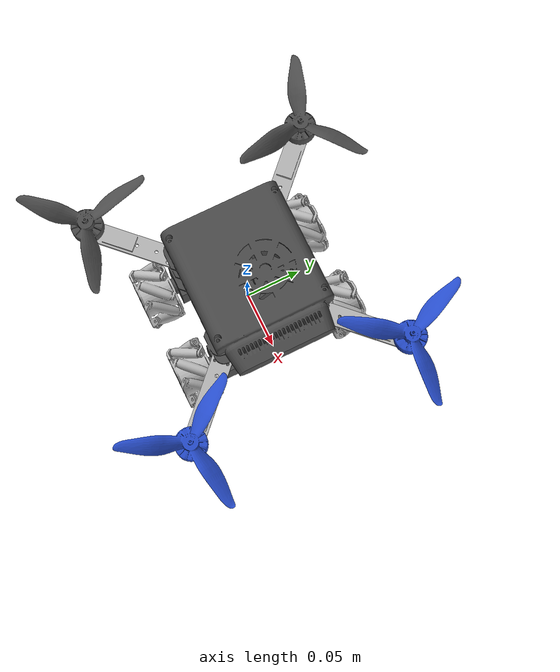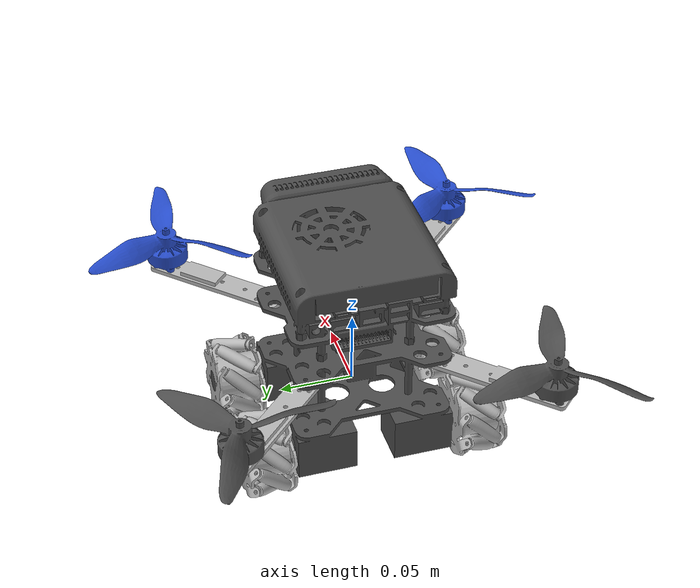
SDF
<!-- DO NOT EDIT: Generated from iris.sdf.jinja -->
<sdf version='1.6'>
  <model name='iris'>
    <link name='base_link'>
      <pose>0 0 0 0 0 0</pose>
      <inertial>
        <pose>0 0 0 0 0 0</pose>
        <mass>2.5</mass>
        <inertia>
          <ixx>0.029125</ixx>
          <ixy>0</ixy>
          <ixz>0</ixz>
          <iyy>0.029125</iyy>
          <iyz>0</iyz>
          <izz>0.055225</izz>
        </inertia>
      </inertial>
      <collision name='base_link_inertia_collision'>
        <pose>0 0 0 0 0 0</pose>
        <geometry>
          <box>
            <size>0.47 0.47 0.11</size>
          </box>
        </geometry>
        <surface>
          <contact>
            <ode>
              <min_depth>0.001</min_depth>
              <max_vel>0</max_vel>
            </ode>
          </contact>
          <friction>
            <ode/>
          </friction>
        </surface>
      </collision>
      <visual name='base_link_inertia_visual'>
        <pose>0 0 0 0 0 0</pose>
        <geometry>
          <mesh>
            <scale>1 1 1</scale>
            <uri>model://uav_v4/meshes/base_link.STL</uri>
          </mesh>
        </geometry>
        <material>
          <script>
            <name>Gazebo/DarkGrey</name>
            <uri>file://media/materials/scripts/gazebo.material</uri>
          </script>
        </material>
      </visual>
      <gravity>1</gravity>
      <velocity_decay/>
    </link>
    <link name='/imu_link'>
      <pose>0 0 0.02 0 0 0</pose>
      <inertial>
        <pose>0 0 0 0 0 0</pose>
        <mass>0.015</mass>
        <inertia>
          <ixx>1e-05</ixx>
          <ixy>0</ixy>
          <ixz>0</ixz>
          <iyy>1e-05</iyy>
          <iyz>0</iyz>
          <izz>1e-05</izz>
        </inertia>
      </inertial>
    </link>
    <joint name='/imu_joint' type='revolute'>
      <child>/imu_link</child>
      <parent>base_link</parent>
      <axis>
        <xyz>1 0 0</xyz>
        <limit>
          <lower>0</lower>
          <upper>0</upper>
          <effort>0</effort>
          <velocity>0</velocity>
        </limit>
        <dynamics>
          <spring_reference>0</spring_reference>
          <spring_stiffness>0</spring_stiffness>
        </dynamics>
        <use_parent_model_frame>1</use_parent_model_frame>
      </axis>
    </joint>
    <joint name='arm1_joint' type='fixed'>
      <pose relative_to='base_link'>0.0475 -0.0455 0.04 0 -0 0</pose>
      <parent>base_link</parent>
      <child>arm1_link</child>
      <axis>
        <xyz>0 0 1</xyz>
        <limit>
          <lower>-3.14</lower>
          <upper>3.14</upper>
          <effort>1</effort>
          <velocity>1</velocity>
        </limit>
        <dynamics>
          <spring_reference>0</spring_reference>
          <spring_stiffness>0</spring_stiffness>
        </dynamics>
      </axis>
    </joint>
    <link name='arm1_link'>
      <pose relative_to='arm1_joint'>0 0 0 0 -0 0</pose>
      <inertial>
        <pose>0.029359 -0.029033 0.001856 0 -0 0</pose>
        <mass>0.010108</mass>
        <inertia>
          <ixx>3.6495e-06</ixx>
          <ixy>3.4138e-06</ixy>
          <ixz>-5.9914e-21</ixz>
          <iyy>3.7257e-06</iyy>
          <iyz>6.4916e-21</iyz>
          <izz>7.3601e-06</izz>
        </inertia>
      </inertial>
      <collision name='arm1_link_collision'>
        <pose>0 0 0 0 -0 0</pose>
        <geometry>
          <mesh>
            <scale>1 1 1</scale>
            <uri>model://uav_v4/meshes/arm1_link.STL</uri>
          </mesh>
        </geometry>
      </collision>
      <visual name='arm1_link_visual'>
        <pose>0 0 0 0 -0 0</pose>
        <geometry>
          <mesh>
            <scale>1 1 1</scale>
            <uri>model://uav_v4/meshes/arm1_link.STL</uri>
          </mesh>
        </geometry>
      </visual>
    </link>
    <joint name='arm2_joint' type='fixed'>
      <pose relative_to='base_link'>-0.0475 0.0455 0.04 0 -0 0</pose>
      <parent>base_link</parent>
      <child>arm2_link</child>
      <axis>
        <xyz>0 0 1</xyz>
        <limit>
          <lower>-3.14</lower>
          <upper>3.14</upper>
          <effort>1</effort>
          <velocity>1</velocity>
        </limit>
        <dynamics>
          <spring_reference>0</spring_reference>
          <spring_stiffness>0</spring_stiffness>
        </dynamics>
      </axis>
    </joint>
    <link name='arm2_link'>
      <pose relative_to='arm2_joint'>0 0 0 0 -0 0</pose>
      <inertial>
        <pose>-0.029296 0.028971 0.001856 0 -0 0</pose>
        <mass>0.0101076</mass>
        <inertia>
          <ixx>3.6495e-06</ixx>
          <ixy>3.4138e-06</ixy>
          <ixz>-5.9914e-21</ixz>
          <iyy>3.7257e-06</iyy>
          <iyz>6.4916e-21</iyz>
          <izz>7.3601e-06</izz>
        </inertia>
      </inertial>
      <collision name='arm2_link_collision'>
        <pose>0 0 0 0 -0 0</pose>
        <geometry>
          <mesh>
            <scale>1 1 1</scale>
            <uri>model://uav_v4/meshes/arm2_link.STL</uri>
          </mesh>
        </geometry>
      </collision>
      <visual name='arm2_link_visual'>
        <pose>0 0 0 0 -0 0</pose>
        <geometry>
          <mesh>
            <scale>1 1 1</scale>
            <uri>model://uav_v4/meshes/arm2_link.STL</uri>
          </mesh>
        </geometry>
      </visual>
    </link>
    <joint name='arm3_joint' type='fixed'>
      <pose relative_to='base_link'>0.0475 0.0455 0.04 0 -0 0</pose>
      <parent>base_link</parent>
      <child>arm3_link</child>
      <axis>
        <xyz>0 0 1</xyz>
        <limit>
          <lower>-3.14</lower>
          <upper>3.14</upper>
          <effort>1</effort>
          <velocity>1</velocity>
        </limit>
        <dynamics>
          <spring_reference>0</spring_reference>
          <spring_stiffness>0</spring_stiffness>
        </dynamics>
      </axis>
    </joint>
    <link name='arm3_link'>
      <pose relative_to='arm3_joint'>0 0 0 0 -0 0</pose>
      <inertial>
        <pose>0.029033 0.029359 0.001856 0 -0 0</pose>
        <mass>0.010108</mass>
        <inertia>
          <ixx>3.6495e-06</ixx>
          <ixy>3.4138e-06</ixy>
          <ixz>-5.9914e-21</ixz>
          <iyy>3.7257e-06</iyy>
          <iyz>6.4916e-21</iyz>
          <izz>7.3601e-06</izz>
        </inertia>
      </inertial>
      <collision name='arm3_link_collision'>
        <pose>0 0 0 0 -0 0</pose>
        <geometry>
          <mesh>
            <scale>1 1 1</scale>
            <uri>model://uav_v4/meshes/arm3_link.STL</uri>
          </mesh>
        </geometry>
      </collision>
      <visual name='arm3_link_visual'>
        <pose>0 0 0 0 -0 0</pose>
        <geometry>
          <mesh>
            <scale>1 1 1</scale>
            <uri>model://uav_v4/meshes/arm3_link.STL</uri>
          </mesh>
        </geometry>
      </visual>
    </link>
    <joint name='arm4_joint' type='fixed'>
      <pose relative_to='base_link'>-0.0475 -0.0455 0.04 0 -0 0</pose>
      <parent>base_link</parent>
      <child>arm4_link</child>
      <axis>
        <xyz>0 0 1</xyz>
        <limit>
          <lower>-3.14</lower>
          <upper>3.14</upper>
          <effort>1</effort>
          <velocity>1</velocity>
        </limit>
        <dynamics>
          <spring_reference>0</spring_reference>
          <spring_stiffness>0</spring_stiffness>
        </dynamics>
      </axis>
    </joint>
    <link name='arm4_link'>
      <pose relative_to='arm4_joint'>0 0 0 0 -0 0</pose>
      <inertial>
        <pose>-0.029033 -0.029359 0.001856 0 -0 0</pose>
        <mass>0.010108</mass>
        <inertia>
          <ixx>3.6495e-06</ixx>
          <ixy>3.4138e-06</ixy>
          <ixz>-5.9914e-21</ixz>
          <iyy>3.7257e-06</iyy>
          <iyz>6.4916e-21</iyz>
          <izz>7.3601e-06</izz>
        </inertia>
      </inertial>
      <collision name='arm4_link_collision'>
        <pose>0 0 0 0 -0 0</pose>
        <geometry>
          <mesh>
            <scale>1 1 1</scale>
            <uri>model://uav_v4/meshes/arm4_link.STL</uri>
          </mesh>
        </geometry>
      </collision>
      <visual name='arm4_link_visual'>
        <pose>0 0 0 0 -0 0</pose>
        <geometry>
          <mesh>
            <scale>1 1 1</scale>
            <uri>model://uav_v4/meshes/arm4_link.STL</uri>
          </mesh>
        </geometry>
      </visual>
    </link>
    <joint name='wing1_joint' type='revolute'>
      <pose relative_to='arm1_link'>0.057004 -0.05632 0.0293 0 -0 0</pose>
      <parent>arm1_link</parent>
      <child>wing1_link</child>
      <axis>
        <xyz>0 0 1</xyz>
        <limit>
          <lower>-1e+16</lower>
          <upper>1e+16</upper>
        </limit>
        <dynamics>
          <spring_reference>0</spring_reference>
          <spring_stiffness>0</spring_stiffness>
        </dynamics>
        <use_parent_model_frame>1</use_parent_model_frame>
      </axis>
    </joint>
    <link name='wing1_link'>
      <pose relative_to='wing1_joint'>0 0 0 0 -0 0</pose>
      <inertial>
        <pose>0 0 0 0 0 0</pose>
        <mass>0.005</mass>
        <inertia>
          <ixx>1.0711e-05</ixx>
          <ixy>-2.2212e-10</ixy>
          <ixz>-2.8595e-11</ixz>
          <iyy>1.0711e-05</iyy>
          <iyz>-9.5706e-11</iyz>
          <izz>1.5206e-05</izz>
        </inertia>
      </inertial>
      <collision name='wing1_link_collision'>
        <pose>0 0 0 0 0 0</pose>
        <geometry>
          <cylinder>
            <length>0.005</length>
            <radius>0.128</radius>
          </cylinder>
        </geometry>
        <surface>
          <contact>
            <ode/>
          </contact>
          <friction>
            <ode/>
          </friction>
        </surface>
      </collision>
      <visual name='wing1_link_visual'>
        <pose>0 0 0 0 0 0</pose>
        <geometry>
          <mesh>
            <scale>1 1 1</scale>
            <uri>model://uav_v4/meshes/wing1_link.STL</uri>
          </mesh>
        </geometry>
        <material>
          <script>
            <name>Gazebo/Blue</name>
            <uri>file://media/materials/scripts/gazebo.material</uri>
          </script>
        </material>
      </visual>
      <gravity>1</gravity>
      <velocity_decay/>
    </link>

    <joint name='wing2_joint' type='revolute'>
      <pose relative_to='arm2_link'>-0.056745 0.056256 0.0293 0 -0 0</pose>
      <parent>arm2_link</parent>
      <child>wing2_link</child>
      <axis>
        <xyz>0 0 1</xyz>
        <limit>
          <lower>-1e+16</lower>
          <upper>1e+16</upper>
        </limit>
        <dynamics>
          <spring_reference>0</spring_reference>
          <spring_stiffness>0</spring_stiffness>
        </dynamics>
        <use_parent_model_frame>1</use_parent_model_frame>
      </axis>
    </joint>
    <link name='wing2_link'>
      <pose relative_to='wing2_joint'>0 0 0 0 -0 0</pose>
      <inertial>
        <pose>0 0 0 0 0 0</pose>
        <mass>0.005</mass>
        <inertia>
          <ixx>1.0711e-05</ixx>
          <ixy>-2.2212e-10</ixy>
          <ixz>-2.8595e-11</ixz>
          <iyy>1.0711e-05</iyy>
          <iyz>-9.5706e-11</iyz>
          <izz>1.5206e-05</izz>
        </inertia>
      </inertial>
      <collision name='wing2_link_collision'>
        <pose>0 0 0 0 0 0</pose>
        <geometry>
          <cylinder>
            <length>0.005</length>
            <radius>0.128</radius>
          </cylinder>
        </geometry>
        <surface>
          <contact>
            <ode/>
          </contact>
          <friction>
            <ode/>
          </friction>
        </surface>
      </collision>
      <visual name='wing2_link_visual'>
        <pose>0 0 0 0 0 0</pose>
        <geometry>
          <mesh>
            <scale>1 1 1</scale>
            <uri>model://uav_v4/meshes/wing2_link.STL</uri>
          </mesh>
        </geometry>
        <material>
          <script>
            <name>Gazebo/DarkGrey</name>
            <uri>file://media/materials/scripts/gazebo.material</uri>
          </script>
        </material>
      </visual>
      <gravity>1</gravity>
      <velocity_decay/>
    </link>
    <joint name='wing3_joint' type='revolute'>
      <pose relative_to='arm3_link'>0.056119 0.056844 0.0293 0 -0 0</pose>
      <parent>arm3_link</parent>
      <child>wing3_link</child>
      <axis>
        <xyz>0 0 1</xyz>
        <limit>
          <lower>-1e+16</lower>
          <upper>1e+16</upper>
        </limit>
        <dynamics>
          <spring_reference>0</spring_reference>
          <spring_stiffness>0</spring_stiffness>
        </dynamics>
        <use_parent_model_frame>1</use_parent_model_frame>
      </axis>
    </joint>
    <link name='wing3_link'>
      <pose relative_to='wing3_joint'>0 0 0 0 -0 0</pose>
      <inertial>
        <pose>0 0 0 0 0 0</pose>
        <mass>0.005</mass>
        <inertia>
          <ixx>1.0711e-05</ixx>
          <ixy>-2.2212e-10</ixy>
          <ixz>-2.8595e-11</ixz>
          <iyy>1.0711e-05</iyy>
          <iyz>-9.5706e-11</iyz>
          <izz>1.5206e-05</izz>
        </inertia>
      </inertial>
      <collision name='wing3_link_collision'>
        <pose>0 0 0 0 0 0</pose>
        <geometry>
          <cylinder>
            <length>0.005</length>
            <radius>0.128</radius>
          </cylinder>
        </geometry>
        <surface>
          <contact>
            <ode/>
          </contact>
          <friction>
            <ode/>
          </friction>
        </surface>
      </collision>
      <visual name='wing3_link_visual'>
        <pose>0 0 0 0 0 0</pose>
        <geometry>
          <mesh>
            <scale>1 1 1</scale>
            <uri>model://uav_v4/meshes/wing3_link.STL</uri>
          </mesh>
        </geometry>
        <material>
          <script>
            <name>Gazebo/Blue</name>
            <uri>file://media/materials/scripts/gazebo.material</uri>
          </script>
        </material>
      </visual>
      <gravity>1</gravity>
      <velocity_decay/>
    </link>
    <joint name='wing4_joint' type='revolute'>
      <pose relative_to='arm4_link'>-0.056169 -0.056994 0.0293 0 -0 0</pose>
      <parent>arm4_link</parent>
      <child>wing4_link</child>
      <axis>
        <xyz>0 0 1</xyz>
        <limit>
          <lower>-1e+16</lower>
          <upper>1e+16</upper>
        </limit>
        <dynamics>
          <spring_reference>0</spring_reference>
          <spring_stiffness>0</spring_stiffness>
        </dynamics>
        <use_parent_model_frame>1</use_parent_model_frame>
      </axis>
    </joint>
    <link name='wing4_link'>
      <pose relative_to='wing4_joint'>0 0 0 0 -0 0</pose>
      <inertial>
        <pose>0 0 0 0 0 0</pose>
        <mass>0.005</mass>
        <inertia>
          <ixx>1.0711e-05</ixx>
          <ixy>-2.2212e-10</ixy>
          <ixz>-2.8595e-11</ixz>
          <iyy>1.0711e-05</iyy>
          <iyz>-9.5706e-11</iyz>
          <izz>1.5206e-05</izz>
        </inertia>
      </inertial>
      <collision name='wing4_link_collision'>
        <pose>0 0 0 0 0 0</pose>
        <geometry>
          <cylinder>
            <length>0.005</length>
            <radius>0.128</radius>
          </cylinder>
        </geometry>
        <surface>
          <contact>
            <ode/>
          </contact>
          <friction>
            <ode/>
          </friction>
        </surface>
      </collision>
      <visual name='wing4_link_visual'>
        <pose>0 0 0 0 0 0</pose>
        <geometry>
          <mesh>
            <scale>1 1 1</scale>
            <uri>model://uav_v4/meshes/wing4_link.STL</uri>
          </mesh>
        </geometry>
        <material>
          <script>
            <name>Gazebo/DarkGrey</name>
            <uri>file://media/materials/scripts/gazebo.material</uri>
          </script>
        </material>
      </visual>
      <gravity>1</gravity>
      <velocity_decay/>
    </link>

    <joint name='wheel1_joint' type='revolute'>
      <pose relative_to='base_link'>0.04 -0.088 -0.015 0 -0 0</pose>
      <parent>base_link</parent>
      <child>wheel1_link</child>
      <axis>
        <xyz>0 1 0</xyz>
        <limit>
          <lower>-1e+16</lower>
          <upper>1e+16</upper>
        </limit>
        <dynamics>
          <spring_reference>0</spring_reference>
          <spring_stiffness>0</spring_stiffness>
        </dynamics>
      </axis>
    </joint>
    <link name='wheel1_link'>
      <pose relative_to='wheel1_joint'>0 0 0 0 -0 0</pose>
      <inertial>
        <pose>-0 0.015781 -0 0 -0 0</pose>
        <mass>0.037807</mass>
        <inertia>
          <ixx>4.513e-06</ixx>
          <ixy>-1.3203e-21</ixy>
          <ixz>-1.8003e-20</ixz>
          <iyy>5.9992e-06</iyy>
          <iyz>-1.2489e-21</iyz>
          <izz>4.513e-06</izz>
        </inertia>
      </inertial>
      <collision name='wheel1_link_collision'>
        <pose>0 0 0 0 -0 0</pose>
        <geometry>
          <mesh>
            <scale>1 1 1</scale>
            <uri>model://uav_v4/meshes/wheel1_link.STL</uri>
          </mesh>
        </geometry>
      </collision>
      <visual name='wheel1_link_visual'>
        <pose>0 0 0 0 -0 0</pose>
        <geometry>
          <mesh>
            <scale>1 1 1</scale>
            <uri>model://uav_v4/meshes/wheel1_link.STL</uri>
          </mesh>
        </geometry>
      </visual>
    </link>
    <joint name='wheel2_joint' type='revolute'>
      <pose relative_to='base_link'>-0.04 -0.088 -0.015 0 -0 0</pose>
      <parent>base_link</parent>
      <child>wheel2_link</child>
      <axis>
        <xyz>0 1 0</xyz>
        <limit>
          <lower>-1e+16</lower>
          <upper>1e+16</upper>
        </limit>
        <dynamics>
          <spring_reference>0</spring_reference>
          <spring_stiffness>0</spring_stiffness>
        </dynamics>
      </axis>
    </joint>
    <link name='wheel2_link'>
      <pose relative_to='wheel2_joint'>0 0 0 0 -0 0</pose>
      <inertial>
        <pose>0 0.015781 -0 0 -0 0</pose>
        <mass>0.037807</mass>
        <inertia>
          <ixx>4.513e-06</ixx>
          <ixy>-1.3756e-21</ixy>
          <ixz>-1.8281e-20</ixz>
          <iyy>5.9992e-06</iyy>
          <iyz>-1.5307e-21</iyz>
          <izz>4.513e-06</izz>
        </inertia>
      </inertial>
      <collision name='wheel2_link_collision'>
        <pose>0 0 0 0 -0 0</pose>
        <geometry>
          <mesh>
            <scale>1 1 1</scale>
            <uri>model://uav_v4/meshes/wheel2_link.STL</uri>
          </mesh>
        </geometry>
      </collision>
      <visual name='wheel2_link_visual'>
        <pose>0 0 0 0 -0 0</pose>
        <geometry>
          <mesh>
            <scale>1 1 1</scale>
            <uri>model://uav_v4/meshes/wheel2_link.STL</uri>
          </mesh>
        </geometry>
      </visual>
    </link>
    <joint name='wheel3_joint' type='revolute'>
      <pose relative_to='base_link'>0.04 0.088 -0.015 0 -0 0</pose>
      <parent>base_link</parent>
      <child>wheel3_link</child>
      <axis>
        <xyz>0 -1 0</xyz>
        <limit>
          <lower>-1e+16</lower>
          <upper>1e+16</upper>
        </limit>
        <dynamics>
          <spring_reference>0</spring_reference>
          <spring_stiffness>0</spring_stiffness>
        </dynamics>
      </axis>
    </joint>
    <link name='wheel3_link'>
      <pose relative_to='wheel3_joint'>0 0 0 0 -0 0</pose>
      <inertial>
        <pose>-0 -0.015781 0 0 -0 0</pose>
        <mass>0.037807</mass>
        <inertia>
          <ixx>4.513e-06</ixx>
          <ixy>1.413e-21</ixy>
          <ixz>1.0661e-20</ixz>
          <iyy>5.9992e-06</iyy>
          <iyz>-7.3807e-22</iyz>
          <izz>4.513e-06</izz>
        </inertia>
      </inertial>
      <collision name='wheel3_link_collision'>
        <pose>0 0 0 0 -0 0</pose>
        <geometry>
          <mesh>
            <scale>1 1 1</scale>
            <uri>model://uav_v4/meshes/wheel3_link.STL</uri>
          </mesh>
        </geometry>
      </collision>
      <visual name='wheel3_link_visual'>
        <pose>0 0 0 0 -0 0</pose>
        <geometry>
          <mesh>
            <scale>1 1 1</scale>
            <uri>model://uav_v4/meshes/wheel3_link.STL</uri>
          </mesh>
        </geometry>
      </visual>
    </link>
    <joint name='wheel4_joint' type='revolute'>
      <pose relative_to='base_link'>-0.04 0.088 -0.015 0 -0 0</pose>
      <parent>base_link</parent>
      <child>wheel4_link</child>
      <axis>
        <xyz>0 1 0</xyz>
        <limit>
          <lower>-1e+16</lower>
          <upper>1e+16</upper>
        </limit>
        <dynamics>
          <spring_reference>0</spring_reference>
          <spring_stiffness>0</spring_stiffness>
        </dynamics>
      </axis>
    </joint>
    <link name='wheel4_link'>
      <pose relative_to='wheel4_joint'>0 0 0 0 -0 0</pose>
      <inertial>
        <pose>-0 -0.015719 0 0 -0 0</pose>
        <mass>0.037807</mass>
        <inertia>
          <ixx>4.513e-06</ixx>
          <ixy>7.8392e-23</ixy>
          <ixz>1.5946e-20</ixz>
          <iyy>5.9992e-06</iyy>
          <iyz>-1.9748e-21</iyz>
          <izz>4.513e-06</izz>
        </inertia>
      </inertial>
      <collision name='wheel4_link_collision'>
        <pose>0 0 0 0 -0 0</pose>
        <geometry>
          <mesh>
            <scale>1 1 1</scale>
            <uri>model://uav_v4/meshes/wheel4_link.STL</uri>
          </mesh>
        </geometry>
      </collision>
      <visual name='wheel4_link_visual'>
        <pose>0 0 0 0 -0 0</pose>
        <geometry>
          <mesh>
            <scale>1 1 1</scale>
            <uri>model://uav_v4/meshes/wheel4_link.STL</uri>
          </mesh>
        </geometry>
      </visual>
    </link>
    <plugin name='rosbag' filename='librotors_gazebo_multirotor_base_plugin.so'>
      <robotNamespace/>
      <linkName>base_link</linkName>
      <rotorVelocitySlowdownSim>10</rotorVelocitySlowdownSim>
    </plugin>
    <plugin name='front_right_motor_model' filename='librotors_gazebo_motor_model.so'>
      <robotNamespace/>
      <jointName>wing1_joint</jointName>
      <linkName>wing1_link</linkName>
      <turningDirection>ccw</turningDirection>
      <timeConstantUp>0.0125</timeConstantUp>
      <timeConstantDown>0.025</timeConstantDown>
      <maxRotVelocity>1100</maxRotVelocity>
      <motorConstant>1.568e-05</motorConstant>
      <momentConstant>0.06</momentConstant>
      <commandSubTopic>/gazebo/command/motor_speed</commandSubTopic>
      <motorNumber>0</motorNumber>
      <rotorDragCoefficient>0.000175</rotorDragCoefficient>
      <rollingMomentCoefficient>1e-06</rollingMomentCoefficient>
      <motorSpeedPubTopic>/motor_speed/0</motorSpeedPubTopic>
      <rotorVelocitySlowdownSim>10</rotorVelocitySlowdownSim>
    </plugin>
    <plugin name='back_left_motor_model' filename='librotors_gazebo_motor_model.so'>
      <robotNamespace/>
      <jointName>wing2_joint</jointName>
      <linkName>wing2_link</linkName>
      <turningDirection>ccw</turningDirection>
      <timeConstantUp>0.0125</timeConstantUp>
      <timeConstantDown>0.025</timeConstantDown>
      <maxRotVelocity>1100</maxRotVelocity>
      <motorConstant>1.568e-05</motorConstant>
      <momentConstant>0.06</momentConstant>
      <commandSubTopic>/gazebo/command/motor_speed</commandSubTopic>
      <motorNumber>1</motorNumber>
      <rotorDragCoefficient>0.000175</rotorDragCoefficient>
      <rollingMomentCoefficient>1e-06</rollingMomentCoefficient>
      <motorSpeedPubTopic>/motor_speed/1</motorSpeedPubTopic>
      <rotorVelocitySlowdownSim>10</rotorVelocitySlowdownSim>
    </plugin>
    <plugin name='front_left_motor_model' filename='librotors_gazebo_motor_model.so'>
      <robotNamespace/>
      <jointName>wing3_joint</jointName>
      <linkName>wing3_link</linkName>
      <turningDirection>cw</turningDirection>
      <timeConstantUp>0.0125</timeConstantUp>
      <timeConstantDown>0.025</timeConstantDown>
      <maxRotVelocity>1100</maxRotVelocity>
      <motorConstant>1.568e-05</motorConstant>
      <momentConstant>0.06</momentConstant>
      <commandSubTopic>/gazebo/command/motor_speed</commandSubTopic>
      <motorNumber>2</motorNumber>
      <rotorDragCoefficient>0.000175</rotorDragCoefficient>
      <rollingMomentCoefficient>1e-06</rollingMomentCoefficient>
      <motorSpeedPubTopic>/motor_speed/2</motorSpeedPubTopic>
      <rotorVelocitySlowdownSim>10</rotorVelocitySlowdownSim>
    </plugin>
    <plugin name='back_right_motor_model' filename='librotors_gazebo_motor_model.so'>
      <robotNamespace/>
      <jointName>wing4_joint</jointName>
      <linkName>wing4_link</linkName>
      <turningDirection>cw</turningDirection>
      <timeConstantUp>0.0125</timeConstantUp>
      <timeConstantDown>0.025</timeConstantDown>
      <maxRotVelocity>1100</maxRotVelocity>
      <motorConstant>1.568e-05</motorConstant>
      <momentConstant>0.06</momentConstant>
      <commandSubTopic>/gazebo/command/motor_speed</commandSubTopic>
      <motorNumber>3</motorNumber>
      <rotorDragCoefficient>0.000175</rotorDragCoefficient>
      <rollingMomentCoefficient>1e-06</rollingMomentCoefficient>
      <motorSpeedPubTopic>/motor_speed/3</motorSpeedPubTopic>
      <rotorVelocitySlowdownSim>10</rotorVelocitySlowdownSim>
    </plugin>
    <include>
      <uri>model://gps</uri>
      <pose>0.05 0 0.04 0 0 0</pose>
      <name>gps0</name>
    </include>
    <joint name='gps0_joint' type='fixed'>
      <child>gps0::link</child>
      <parent>base_link</parent>
    </joint>
    <plugin name='magnetometer_plugin' filename='librotors_gazebo_magnetometer_plugin.so'>
      <robotNamespace/>
      <pubRate>100</pubRate>
      <noiseDensity>0.0004</noiseDensity>
      <randomWalk>6.4e-06</randomWalk>
      <biasCorrelationTime>600</biasCorrelationTime>
      <magTopic>/mag</magTopic>
    </plugin>

    <plugin name="mecanum_drive_plugin" filename="libgazebo_ros_planar_move.so">
      <commandTopic>/mecanum/cmd_vel</commandTopic>
      <odometryTopic>/odom_mecanum</odometryTopic>
      <odometryFrame>odom</odometryFrame>
      <odometryRate>50.0</odometryRate>
      <robotBaseFrame>base_link</robotBaseFrame>
    </plugin>

    <static>0</static>
    <plugin name='rotors_gazebo_imu_plugin' filename='librotors_gazebo_imu_plugin.so'>
      <robotNamespace/>
      <linkName>/imu_link</linkName>
      <imuTopic>/imu</imuTopic>
    </plugin>
  </model>
</sdf>

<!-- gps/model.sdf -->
<sdf version="1.6">
  <model name="gps">
    <link name="link">
      <pose>0 0 0 0 0 0</pose>
      <inertial>
        <pose>0 0 0 0 0 0</pose>
        <mass>0.015</mass>
        <inertia>
          <ixx>1e-05</ixx>
          <ixy>0</ixy>
          <ixz>0</ixz>
          <iyy>1e-05</iyy>
          <iyz>0</iyz>
          <izz>1e-05</izz>
        </inertia>
      </inertial>
      <visual name="visual">
        <geometry>
          <cylinder>
            <radius>0.01</radius>
            <length>0.002</length>
          </cylinder>
        </geometry>
        <material>
          <script>
            <name>Gazebo/Black</name>
            <uri>file://usr/share/gz/gz-sim8/media/gazebo.material</uri>
          </script>
        </material>
      </visual>
      <sensor name="gps" type="gps">
        <pose>0 0 0 0 0 0</pose>
        <update_rate>5.0</update_rate>
        <always_on>true</always_on>
        <visualize>false</visualize>
        <!-- GpsSensor noise currently not used -->
        <plugin name="gps_plugin" filename="libgazebo_gps_plugin.so">
          <robotNamespace></robotNamespace>
          <gpsNoise>true</gpsNoise>
          <gpsXYRandomWalk>2.0</gpsXYRandomWalk>
          <gpsZRandomWalk>4.0</gpsZRandomWalk>
          <gpsXYNoiseDensity>2.0e-4</gpsXYNoiseDensity>
          <gpsZNoiseDensity>4.0e-4</gpsZNoiseDensity>
          <gpsVXYNoiseDensity>0.2</gpsVXYNoiseDensity>
          <gpsVZNoiseDensity>0.4</gpsVZNoiseDensity>
        </plugin>
      </sensor>
    </link>
  </model>
</sdf>
